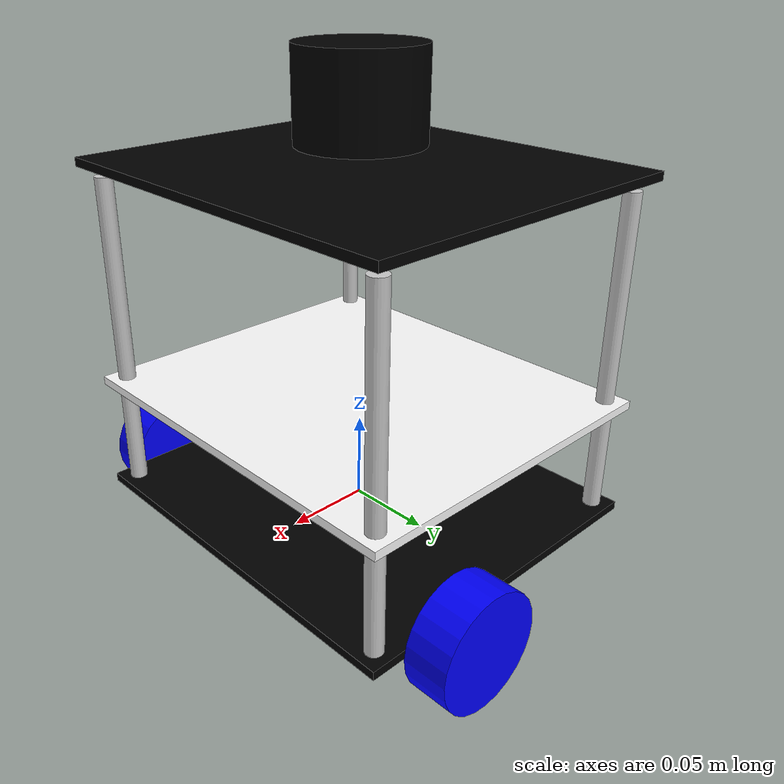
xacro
<?xml version="1.0"?>
<robot name="dif_robot" xmlns:xacro="http://www.ros.org/wiki/xacro">

    <xacro:include filename="dif_robot_materials.xacro" />
    <xacro:include filename="rod_macro.xacro" />

	<xacro:include filename="inertial_macros.xacro" />

    <!-- Корневое звено -->
    <link name="odom"/>

    <!-- ========== Первый уровень: основная платформа ========== -->
    <link name="base_link">
        <visual>
        <geometry>
            <box size="0.2 0.23 0.005"/>
        </geometry>
        <material name="black"/>
        </visual>
        <collision>
        <geometry>
            <box size="0.2 0.23 0.005"/>
        </geometry>
        </collision>

        <xacro:inertial_box mass="2.0" x="0.2" y="0.23" z="0.005">
			    <origin xyz="0 0 0" rpy="0 0 0"/>
		</xacro:inertial_box>
    </link>
    <joint name="base_link_joint" type="fixed">
        <parent link="odom"/>
        <child link="base_link"/>
        <origin xyz="0 0 0" rpy="0 0 0"/>
    </joint>

    <!-- Четыре стойки (палки) от base_link к верхней платформе
        Диаметр 10 мм => радиус 0.005 м
        Длина ~0.19 м (от z=0.005 до z=0.195)
        Располагаем их в углах (x=±0.09, y=±0.105) -->

    <xacro:rod_macro name_link="rod_front_left"     name_joint="rod_front_left_joint"   x_pos="0.09"    y_pos="0.105"/>
    <xacro:rod_macro name_link="rod_front_right"    name_joint="rod_front_right_joint"  x_pos="0.09"    y_pos="-0.105"/>
    <xacro:rod_macro name_link="rod_rear_left"      name_joint="rod_rear_left_joint"    x_pos="-0.09"   y_pos="0.105"/>
    <xacro:rod_macro name_link="rod_rear_right"     name_joint="rod_rear_right_joint"   x_pos="-0.09"   y_pos="-0.105"/>

    <!-- Колёсная база (левая сторона) -->
    <link name="left_base">
        <visual>
        <geometry>
            <box size="0.01 0.01 0.01"/>
        </geometry>
        </visual>
    </link>
    <joint name="left_base_joint" type="fixed">
        <parent link="base_link"/>
        <child link="left_base"/>
        <origin xyz="0.05 0.13 0" rpy="0 0 0"/>
    </joint>
    <link name="left_wheel">
        <visual>
        <origin rpy="1.57075 0 0" xyz="0 0 0"/>
        <geometry>
            <cylinder length="0.025" radius="0.0325"/>
        </geometry>
        <material name="blue"/>
        </visual>
        <collision>
        <origin rpy="1.57075 0 0" xyz="0 0 0"/>
        <geometry>
            <cylinder length="0.025" radius="0.0325"/>
        </geometry>
        </collision>

        <xacro:inertial_cylinder mass="1" length="0.025" radius="0.0325">
			    <origin xyz="0 0 0" rpy="1.57075 0 0"/>
		</xacro:inertial_cylinder>

    </link>
    <joint name="left_wheel_joint" type="continuous">
        <axis xyz="0 1 0"/>
        <parent link="left_base"/>
        <child link="left_wheel"/>
        <origin xyz="0 0 0" rpy="0 0 0"/>
        <command_interface name="velocity"/>
        <state_interface name="position"/>
        <state_interface name="velocity"/>
    </joint>

    <!-- Колёсная база (правая сторона) -->
    <link name="right_base">
        <visual>
        <geometry>
            <box size="0.01 0.01 0.01"/>
        </geometry>
        </visual>
    </link>
    <joint name="right_base_joint" type="fixed">
        <parent link="base_link"/>
        <child link="right_base"/>
        <origin xyz="0.05 -0.13 0" rpy="0 0 0"/>
    </joint>
    <link name="right_wheel">
        <visual>
        <origin rpy="1.57075 0 0" xyz="0 0 0"/>
        <geometry>
            <cylinder length="0.025" radius="0.0325"/>
        </geometry>
        <material name="blue"/>
        </visual>
        <collision>
        <origin rpy="1.57075 0 0" xyz="0 0 0"/>
        <geometry>
            <cylinder length="0.025" radius="0.0325"/>
        </geometry>
        </collision>

        <xacro:inertial_cylinder mass="1" length="0.025" radius="0.0325">
			    <origin xyz="0 0 0" rpy="1.57075 0 0"/>
		</xacro:inertial_cylinder>
    </link>
    <joint name="right_wheel_joint" type="continuous">
        <axis xyz="0 1 0"/>
        <parent link="right_base"/>
        <child link="right_wheel"/>
        <origin xyz="0 0 0" rpy="0 0 0"/>
        <command_interface name="velocity"/>
        <state_interface name="position"/>
        <state_interface name="velocity"/>
    </joint>

    <!-- Caster (опорное колесо) -->
    <link name="caster_wheel">
        <visual>
        <origin xyz="0 0 0" rpy="0 0 0"/>
        <geometry>
            <sphere radius="0.01625"/>
        </geometry>
        <material name="white"/>
        </visual>
        <collision>
        <origin xyz="0 0 0" rpy="0 0 0"/>
        <geometry>
            <sphere radius="0.01625"/>
        </geometry>
        </collision>
        <inertial>
        <mass value="0.1"/>
        <inertia ixx="1e-4" ixy="0" ixz="0"
                iyy="1e-3" iyz="0" izz="1e-3"/>
        </inertial>
    </link>
    <joint name="caster_wheel_joint" type="fixed">
        <parent link="base_link"/>
        <child link="caster_wheel"/>
        <origin xyz="-0.09 0 -0.01625" rpy="0 0 0"/>
    </joint>

    <!-- ========== Второй уровень: плата электроники ========== -->
    <link name="electronics_plate">
        <visual>
            <!-- Нижняя поверхность на 0.0025 м -->
            <origin xyz="0 0 0.0025" rpy="0 0 0"/>
            <geometry>
                <box size="0.2 0.23 0.005"/>
            </geometry>
            <material name="white"/>
        </visual>

        <collision>
            <origin xyz="0 0 0.0025" rpy="0 0 0"/>
            <geometry>
                <box size="0.2 0.23 0.005"/>
            </geometry>
        </collision>

        <xacro:inertial_box mass="0.6" x="0.2" y="0.23" z="0.005">
			    <origin xyz="0 0 0.0025" rpy="0 0 0"/>
		</xacro:inertial_box>
    </link>
    <joint name="electronics_plate_joint" type="fixed">
        <parent link="base_link"/>
        <child link="electronics_plate"/>
        <origin xyz="0 0 0.065" rpy="0 0 0"/>
    </joint>

    <!-- ========== Третий уровень: верхняя платформа ========== -->
    <link name="top_plate">
        <visual>
        <origin xyz="0 0 0.0025" rpy="0 0 0"/>
        <geometry>
            <box size="0.2 0.23 0.005"/>
        </geometry>
        <material name="black"/>
        </visual>
        <collision>
        <origin xyz="0 0 0.0025" rpy="0 0 0"/>
        <geometry>
            <box size="0.2 0.23 0.005"/>
        </geometry>
        </collision>
        <xacro:inertial_box mass="0.3" x="0.2" y="0.23" z="0.005">
			    <origin xyz="0 0 0.0025" rpy="0 0 0"/>
		</xacro:inertial_box>
    </link>
    <joint name="top_plate_joint" type="fixed">
        <parent link="electronics_plate"/>
        <child link="top_plate"/>
        <origin xyz="0 0 0.130" rpy="0 0 0"/>
    </joint>

    <!-- ========== Лидар (на верхней платформе) ========== -->
    <link name="lidar_link">
        <visual>
        <origin xyz="0 0 0.04" rpy="0 0 0"/>
        <geometry>
            <cylinder radius="0.035" length="0.05"/>
        </geometry>
        <material name="black"/>
        </visual>
        <collision>
        <origin xyz="0 0 0.04" rpy="0 0 0"/>
        <geometry>
            <cylinder radius="0.035" length="0.05"/>
        </geometry>
        </collision>
        <inertial>
        <mass value="0.2"/>
        <origin xyz="0 0 0.04" rpy="0 0 0"/>
        <inertia ixx="1e-4" ixy="0" ixz="0"
                iyy="1e-4" iyz="0" izz="1e-4"/>
        </inertial>
    </link>
    <joint name="lidar_joint" type="fixed">
        <parent link="top_plate"/>
        <child link="lidar_link"/>
        <origin xyz="0 0 0" rpy="0 0 0"/>
    </joint>

    <!-- Gazebo sensor -->
    <gazebo reference="lidar_link">
    <sensor name="gpu_lidar" type="gpu_lidar">
        <update_rate>10</update_rate>
        <topic>lidar_scan</topic>
        <gz_frame_id>lidar_link</gz_frame_id>
        <lidar>
        <scan>
            <horizontal>
            <samples>720</samples>
            <resolution>1</resolution>
            <min_angle>-3.14159</min_angle>
            <max_angle>3.14159</max_angle>
            </horizontal>
        </scan>
        <range>
            <min>0.05</min>
            <max>10.0</max>
            <resolution>0.01</resolution>
        </range>
        </lidar>
        <always_on>true</always_on>
        <visualize>true</visualize>
    </sensor>
    </gazebo>

    <!-- ========== ros2_control (управление колесами) ========== -->
    <ros2_control name="my_robot_hardware" type="system">
        <hardware>
            <plugin>gz_ros2_control/GazeboSimSystem</plugin>
        </hardware>

        <joint name="left_wheel_joint">
        <command_interface name="velocity"/>
        <state_interface name="position"/>
        <state_interface name="velocity"/>
        </joint>
        <joint name="right_wheel_joint">
        <command_interface name="velocity"/>
        <state_interface name="position"/>
        <state_interface name="velocity"/>
        </joint>
    </ros2_control>

    <gazebo>
        <plugin name="gz_ros2_control::GazeboSimROS2ControlPlugin" filename="libgz_ros2_control-system.so">
            <!-- Имя модели в Gazebo (model name) должно совпадать с тем,
                под которым ты спавнишь робота. Часто можно не указывать,
                тогда плагин применится к этой модели. -->
            <joint_state_topic>joint_states</joint_state_topic>
            <robot_param>robot_description</robot_param>
            <!-- Можно задать namespace, если нужно -->

            <!-- new_dd_controllers.yaml -->
            <parameters>/home/ager/ros2_ws/install/my_two_wheel_robot/share/my_two_wheel_robot/config/dd_controllers.yaml</parameters>
        </plugin>
    </gazebo>

</robot>

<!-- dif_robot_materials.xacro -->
<!-- Определения материалов -->

<robot xmlns:xacro="http://www.ros.org/wiki/xacro">
    <material name="blue">
        <color rgba="0 0 1 1"/>
    </material>

    <material name="black">
        <color rgba="0 0 0 1"/>
    </material>

    <material name="white">
        <color rgba="1 1 1 1"/>
    </material>

    <material name="green">
        <color rgba="0 0.7 0 1"/>
    </material>

    <!-- Материал для стоек (пример: серебристый) -->
    <material name="silver">
        <color rgba="0.8 0.8 0.8 1.0"/>
    </material>

    <material name="yellow">
        <color rgba="1 1 0 1"/>
    </material>
</robot>

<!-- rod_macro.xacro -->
<robot xmlns:xacro="http://www.ros.org/wiki/xacro">

    <xacro:macro name="rod_macro" params="name_link name_joint x_pos y_pos">
    <link name="${name_link}">
        <visual>
            <!-- Поднимаем её центр на середину (0.095), смещаем в угол (x=+0.09, y=+0.105) -->
            <origin xyz="${x_pos} ${y_pos} 0.095" rpy="0 0 0"/>
            <geometry>
                <cylinder length="0.19" radius="0.005"/>
            </geometry>
            <material name="silver"/>
        </visual>
        <collision>
            <origin xyz="${x_pos} ${y_pos} 0.095" rpy="0 0 0"/>
            <geometry>
                <cylinder length="0.19" radius="0.005"/>
            </geometry>
        </collision>

        <xacro:inertial_cylinder mass="0.05" radius="0.005" length="0.19">
			    <origin xyz="${x_pos} ${y_pos} 0.095" rpy="0 0 0"/>
		</xacro:inertial_cylinder>

    </link>

    <joint name="${name_joint}" type="fixed">
        <parent link="base_link"/>
        <child link="${name_link}"/>
        <origin xyz="0 0 0" rpy="0 0 0"/>
    </joint>
    </xacro:macro>

</robot>
